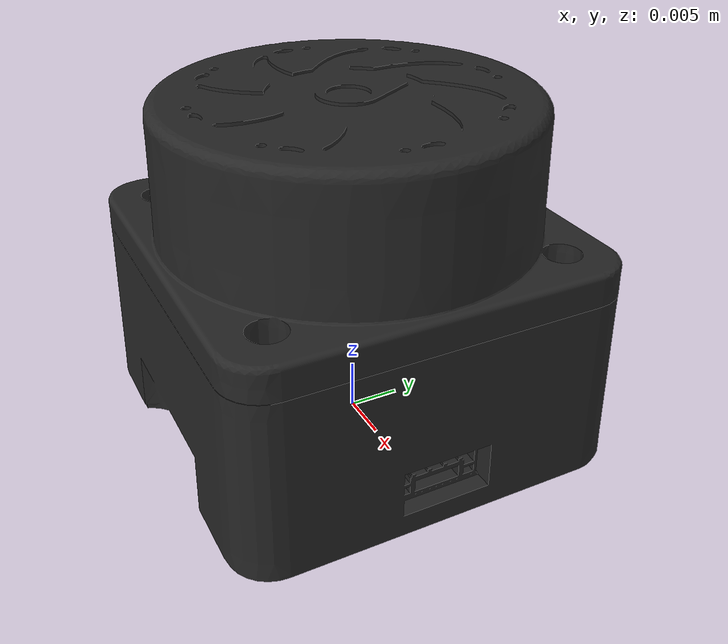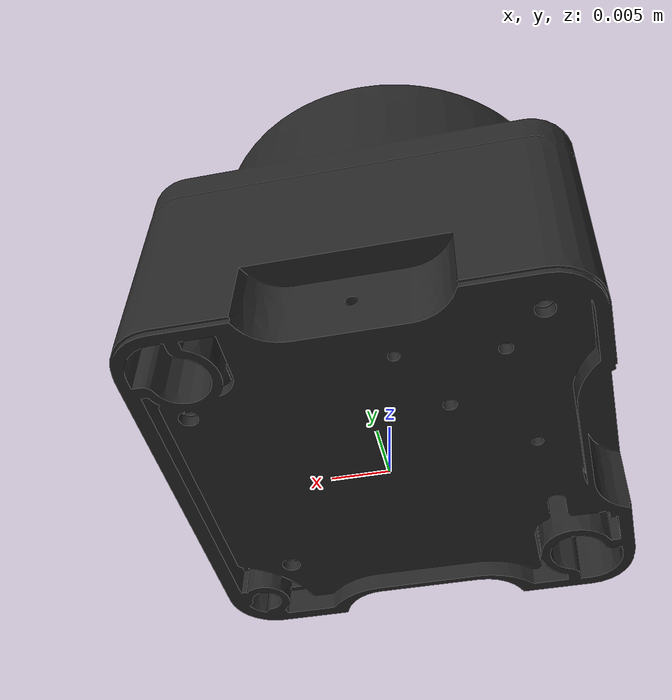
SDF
<?xml version="1.0"?>
<sdf version="1.9">
  <model name="lidar_2d_generic">
    <link name="lidar_2d_generic_link">
      <pose>0 0 0 0 0 0</pose>
      <inertial>
        <pose>0 0 0.017 0 0 0</pose>
        <mass>0.045</mass>
        <inertia>
          <ixx>9.9e-06</ixx>
          <ixy>0</ixy>
          <ixz>0</ixz>
          <iyy>9.9e-06</iyy>
          <iyz>0</iyz>
          <izz>1.12e-05</izz>
        </inertia>
      </inertial>
      <collision name="lidar_2d_generic_collision">
        <pose>0 0 0.017 0 0 0</pose>
        <geometry>
          <box>
            <size>0.0386 0.0386 0.0339</size>
          </box>
        </geometry>
      </collision>
      <!-- YDLidar TFmini Plus mesh (meters, Z-up). Origin at geometry center; shift up so base sits on link origin. -->
      <visual name="lidar_2d_generic_visual">
        <pose>0 0 0.01511 0 0 0</pose>
        <geometry>
          <mesh>
            <uri>model://lidar_2d_generic/meshes/ydlidar-tfmini-plus.stl</uri>
          </mesh>
        </geometry>
        <material>
          <diffuse>0.15 0.15 0.15 1</diffuse>
        </material>
      </visual>
      <!-- YDLidar T-mini Plus: 360 deg, 0.05-12 m, 6-12 Hz scan (400 samples @ 10 Hz ~= 4000 Hz ranging) -->
      <sensor name="lidar_2d_generic" type="gpu_lidar">
        <gz_frame_id>lidar_2d_generic_link</gz_frame_id>
        <pose>0 0 0.028 0 0 0</pose>
        <topic>/lidar/scan</topic>
        <ray>
          <scan>
            <horizontal>
              <samples>400</samples>
              <resolution>1</resolution>
              <min_angle>-3.141592653589793</min_angle>
              <max_angle>3.141592653589793</max_angle>
            </horizontal>
          </scan>
          <range>
            <min>0.05</min>
            <max>12</max>
            <resolution>0.01</resolution>
          </range>
          <noise>
            <type>gaussian</type>
            <mean>0.0</mean>
            <stddev>0.001</stddev>
          </noise>
        </ray>
        <always_on>1</always_on>
        <update_rate>10</update_rate>
        <visualize>false</visualize>
      </sensor>
    </link>
  </model>
</sdf>
